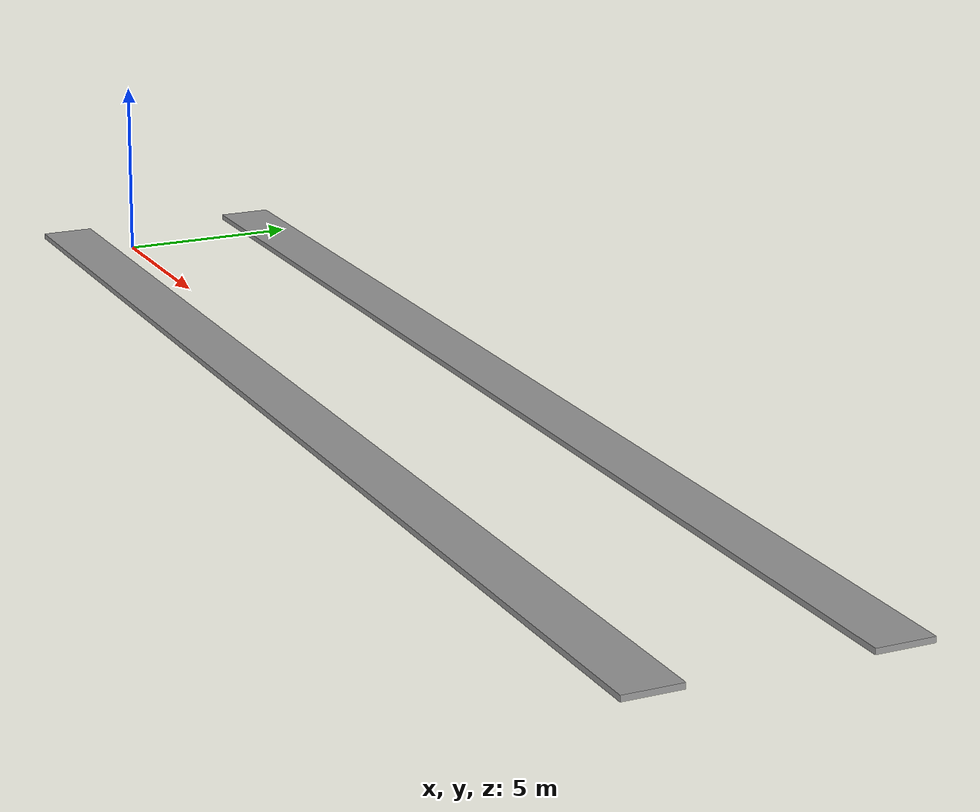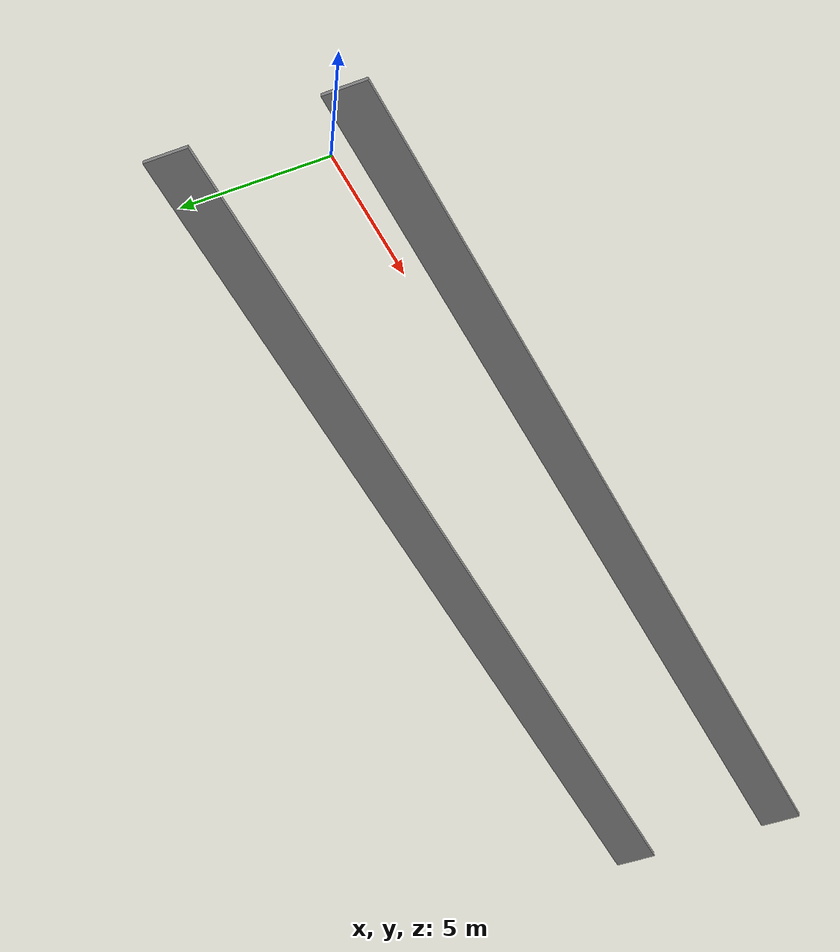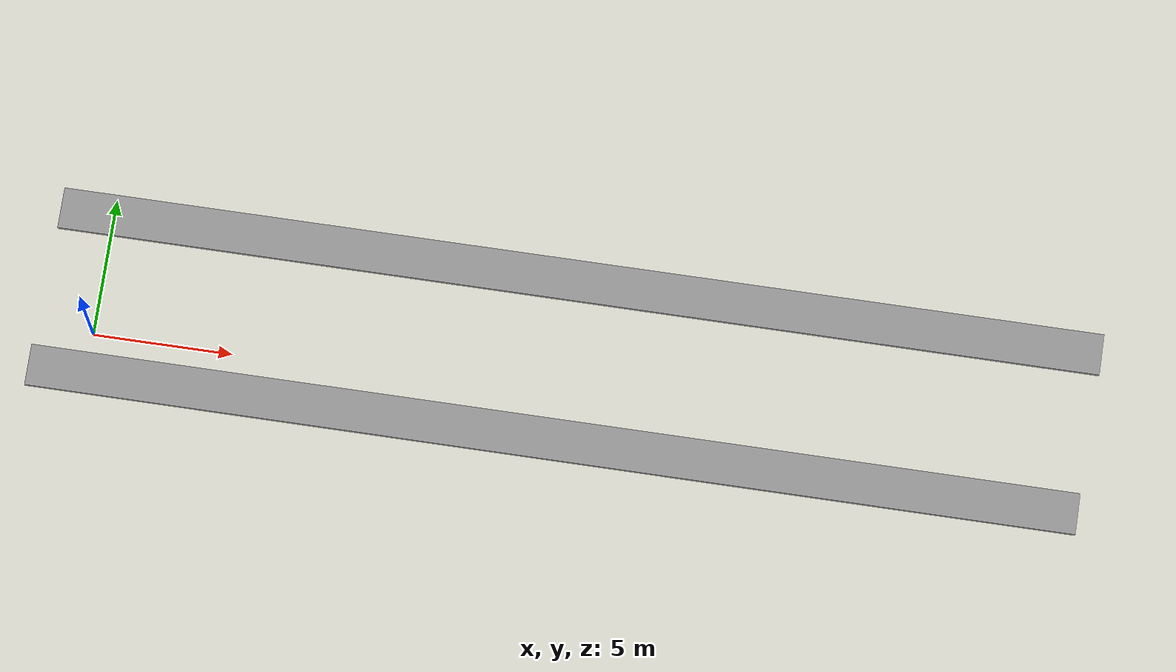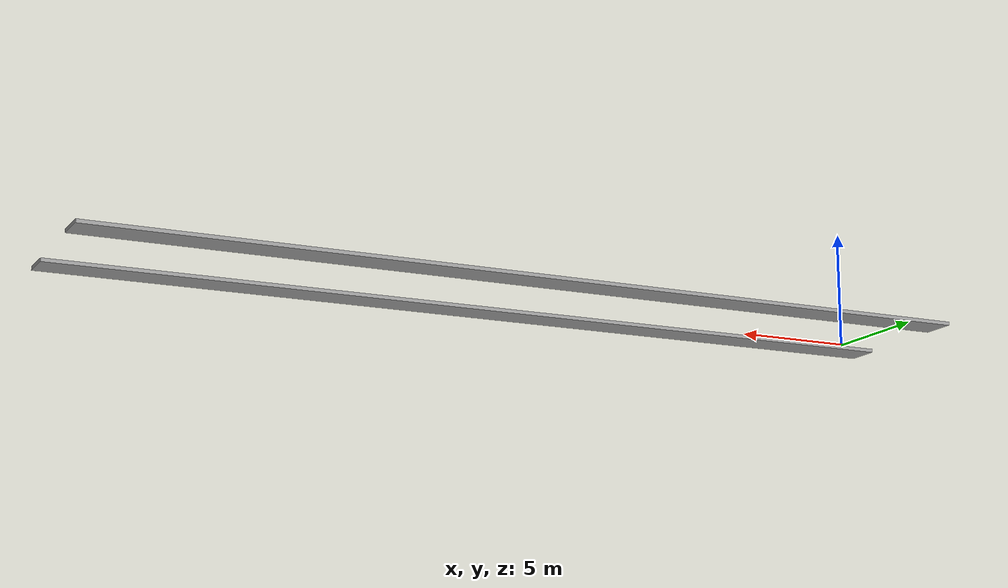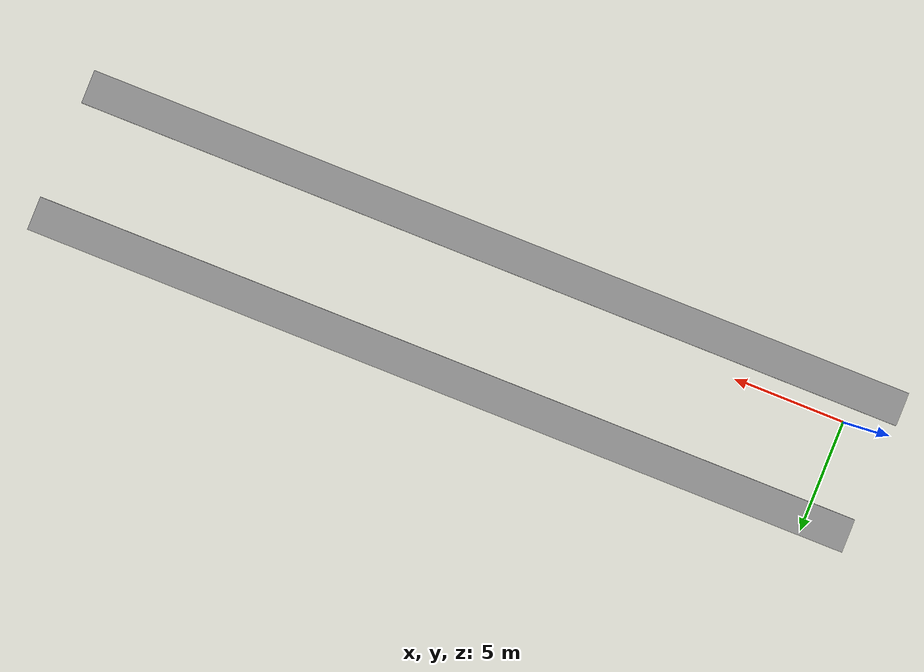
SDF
<?xml version='1.0'?>
<sdf version='1.6'>
  <model name='Direita_30m'>
    <pose frame=''>16.7873 1.50826 0 0 -0 0</pose>
    <link name='Wall_3'>
      <collision name='Wall_3_Collision'>
        <geometry>
          <box>
            <size>37 0.15 0.15</size>
          </box>
        </geometry>
        <pose frame=''>0 0 0.075 0 -0 0</pose>
      </collision>
      <visual name='Wall_3_Visual'>
        <pose frame=''>0 0 0.075 0 -0 0</pose>
        <geometry>
          <box>
            <size>37.5 1.5 0.15</size>
          </box>
        </geometry>
        <material>
          <script>
            <uri>file://media/materials/scripts/gazebo.material</uri>
            <name>Gazebo/Grey</name>
          </script>
          <ambient>1 1 1 1</ambient>
        </material>
        <meta>
          <layer>0</layer>
        </meta>
      </visual>
      <pose frame=''>-0.141751 -2.94314 0 0 -0 0</pose>
    </link>
    <link name='Wall_5'>
      <collision name='Wall_5_Collision'>
        <geometry>
          <box>
            <size>37.5 1.5 0.15</size>
          </box>
        </geometry>
        <pose frame=''>0 0 0 0 -0 0</pose>
      </collision>
      <visual name='Wall_5_Visual'>
        <pose frame=''>0 0 0.075 0 -0 0</pose>
        <geometry>
          <box>
            <size>37.5 1.5 0.15</size>
          </box>
        </geometry>
        <material>
          <script>
            <uri>file://media/materials/scripts/gazebo.material</uri>
            <name>Gazebo/Grey</name>
          </script>
          <ambient>1 1 1 1</ambient>
        </material>
        <meta>
          <layer>0</layer>
        </meta>
      </visual>
      <pose frame=''>0.016749 2.94314 0 0 -0 3.14159</pose>
    </link>
    <static>1</static>
  </model>
</sdf>
